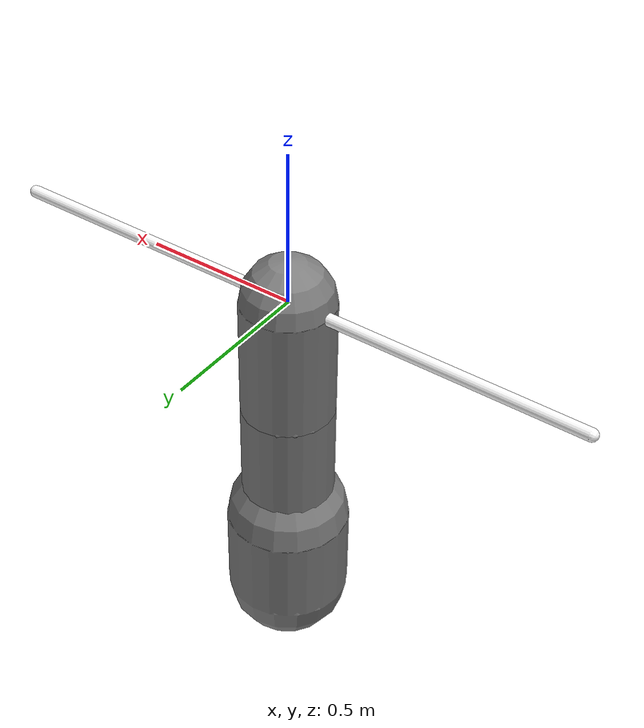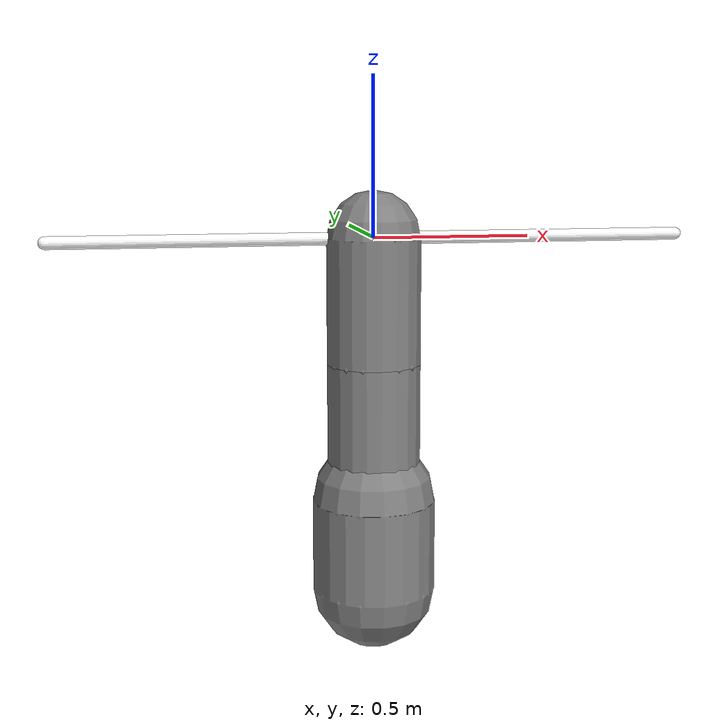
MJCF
<mujoco model="two finger">
  <compiler inertiafromgeom="true"/>
  <default>
    <tendon/>
    <motor ctrlrange="-3 3"/>
  </default>
  <option gravity="0 0 -0.0" timestep="0.02" />

  <worldbody>
    <light diffuse=".5 .5 .5" pos="0 0 3" dir="0 0 -1"/>
    <!--geom name="ground" type="plane" pos="0 0 0" /-->
    <geom name="rail" pos="0 0 0" quat="0.707 0 0.707 0" size="0.02 1" contype="0" conaffinity = "0" type="capsule" rgba="1 1 1 1"/>
    <body name="upper" pos="0 0 0">
      <joint axis="0 1 0" name="dof1" pos="0 0 0" type="hinge"/>
      <geom name="upper" pos="0 0 -0.2" quat="0.707 0 0 0.707" size="0.15 0.2"  friction="1. 0.1 0.1" mass="0.05" type="capsule"  />
      <body name="lower" pos="0 0 -0.4">
        <joint axis="0 1 0" name="dof2" pos="0 0 0" type="hinge"/>
        <geom name="lower" pos="0 0 -0.2" quat="0.707 0 0 0.707" size="0.15 0.2" friction="1. 0.1 0.1" mass="0.05" type="capsule"  />
      </body>
    </body>
    <body name="object" pos="0 0 -1.0">
      <geom name="object" pos="0 0 0" quat="0.707 0 0 0.707" size="0.2 0.15" friction="0.1 0. 0." mass="0.05" type="capsule" />
      <joint axis="0 1 0" name="object" pos="0 0 0" type="hinge"/>

    </body>
    <body name="goal" pos="0 0 -1.0">
      <geom name="goal" density="0.00001" pos="0 0 0" quat="0.707 0 0 0.707" size="0.2 0.15"
      contype="0" conaffinity = "0" friction="1 0. 0." mass="0.05" type="capsule" rgba="1 0 1 0.25"/>
      <joint axis="0 1 0" name="goal" pos="0 0 0" damping="10." type="hinge"/>
    </body>
  </worldbody>
  <actuator>
    <motor ctrllimited="true" ctrlrange="-1 1" gear=".3" joint="dof1" name="dof1"/>
    <motor ctrllimited="true" ctrlrange="-1 1" gear=".3" joint="dof2" name="dof2"/>
  </actuator>
  <contact>
    <exclude body1="upper" body2="lower"/>
  </contact>
  <keyframe>
    <key name="home"
      qpos="
    -1.5 +1.5 -1.5 1.047
    "
    qvel="
    0 0 5.0 0
    "
    />

  </keyframe>
</mujoco>
